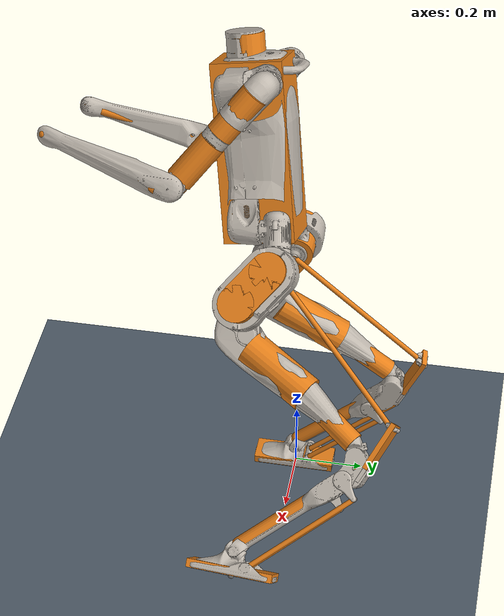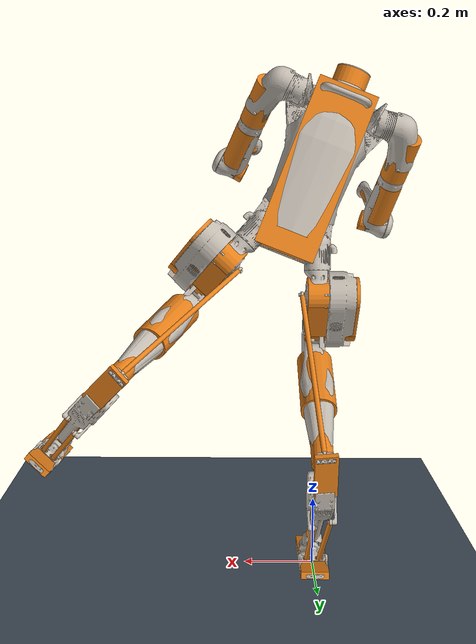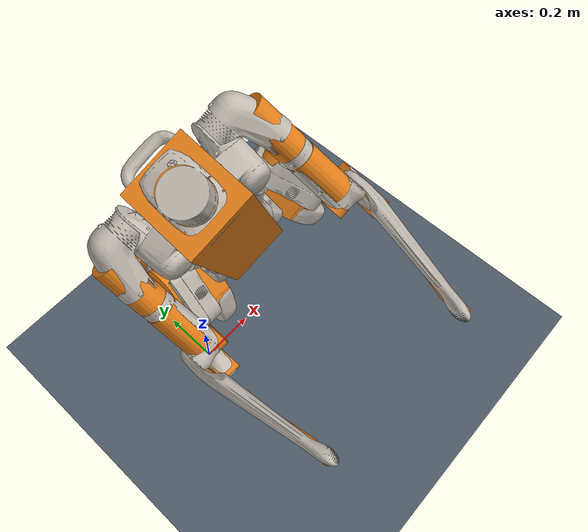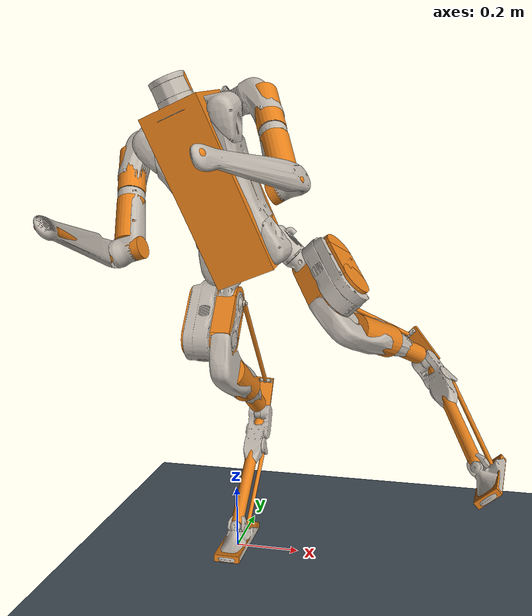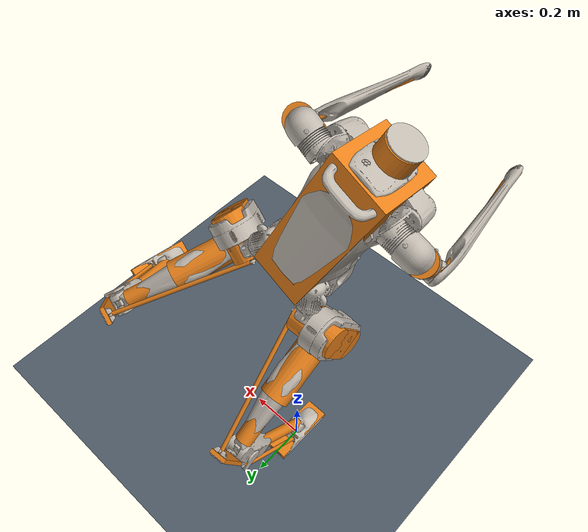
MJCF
<mujoco model='digit-v3'>
  <compiler angle='degree' eulerseq='xyz' meshdir='obj' texturedir='obj'/>
  <option iterations='400' solver='Newton' timestep='0.0001' gravity='0 0 -9.806' integrator='Euler'/>
  <size nconmax='100' />
  <asset>
    <material name='collision' rgba='0.1 0.5 0.9 0.4'/>
    <material name='plane' reflectance='0.0' texrepeat='1 1' texture='plane' texuniform='true'/>
	  <material name="MatGnd" reflectance="0.0" texture="texplane" texrepeat="1 1" texuniform="true"/>
    <texture builtin='checker' height='512' name='plane' rgb1='0.2 0.2 0.2' rgb2='0.3 0.3 0.3' type='2d' width='512'/>
    <texture name='texplane' type='2d' builtin='checker' rgb1='.2 .3 .4' rgb2='.4 .4 .4' width="512" height="512"/>
    <texture builtin='gradient' height='128' rgb1='0.4 0.6 0.8' rgb2='0 0 0' type='skybox' width='128'/>

    <material name="base-0" texture="base-0"/>
    <material name="base-1" texture="base-1"/>
    <material name="base-2" texture="base-2"/>
    <material name="base-3" texture="base-3"/>
    <material name="base-4" texture="base-4"/>
    <material name="left-hip-roll-0" texture="left-hip-roll-0"/>
    <material name="left-hip-yaw-0" texture="left-hip-yaw-0"/>
    <material name="left-hip-pitch-0" texture="left-hip-pitch-0"/>
	  <material name="left-achilles-rod-0" texture="left-achilles-rod-0"/>
    <material name="left-knee-0" texture="left-knee-0"/>
    <material name="left-shin-0" texture="left-shin-0"/>
    <material name="left-tarsus-0" texture="left-tarsus-0"/>
  	<material name="left-heel-spring-0" texture="left-heel-spring-0"/>
    <material name="left-toe-A-0" texture="left-toe-A-0"/>
    <material name="left-toe-A-rod-0" texture="left-toe-A-rod-0"/>
	  <material name="left-toe-B-0" texture="left-toe-B-0"/>
    <material name="left-toe-B-rod-0" texture="left-toe-B-rod-0"/>
    <material name="left-toe-pitch-0" texture="left-toe-pitch-0"/>
    <material name="left-toe-roll-0" texture="left-toe-roll-0"/>
    <material name="left-shoulder-roll-0" texture="left-shoulder-roll-0"/>
    <material name="left-shoulder-pitch-0" texture="left-shoulder-pitch-0"/>
    <material name="left-shoulder-yaw-0" texture="left-shoulder-yaw-0"/>
    <material name="left-elbow-0" texture="left-elbow-0"/>
    <material name="right-hip-roll-0" texture="right-hip-roll-0"/>
    <material name="right-hip-yaw-0" texture="right-hip-yaw-0"/>
    <material name="right-hip-pitch-0" texture="right-hip-pitch-0"/>
	  <material name="right-achilles-rod-0" texture="right-achilles-rod-0"/>
    <material name="right-knee-0" texture="right-knee-0"/>
    <material name="right-shin-0" texture="right-shin-0"/>
    <material name="right-tarsus-0" texture="right-tarsus-0"/>
	  <material name="right-heel-spring-0" texture="right-heel-spring-0"/>
    <material name="right-toe-A-0" texture="right-toe-A-0"/>
    <material name="right-toe-A-rod-0" texture="right-toe-A-rod-0"/>
	  <material name="right-toe-B-0" texture="right-toe-B-0"/>
    <material name="right-toe-B-rod-0" texture="right-toe-B-rod-0"/>
    <material name="right-toe-pitch-0" texture="right-toe-pitch-0"/>
    <material name="right-toe-roll-0" texture="right-toe-roll-0"/>
    <material name="right-shoulder-roll-0" texture="right-shoulder-roll-0"/>
    <material name="right-shoulder-pitch-0" texture="right-shoulder-pitch-0"/>
    <material name="right-shoulder-yaw-0" texture="right-shoulder-yaw-0"/>
    <material name="right-elbow-0" texture="right-elbow-0"/>

    <texture type="2d" name="base-0" file="torso.png"/>
    <texture type="2d" name="base-1" file="hip-roll-housing.png"/>
    <texture type="2d" name="base-2" file="hip-roll-housing.png"/>
    <texture type="2d" name="base-3" file="shoulder-roll-housing.png"/>
    <texture type="2d" name="base-4" file="shoulder-roll-housing.png"/>
    <texture type="2d" name="left-hip-roll-0" file="hip-yaw-housing.png"/>
    <texture type="2d" name="left-hip-yaw-0" file="hip-pitch-housing.png"/>
    <texture type="2d" name="left-hip-pitch-0" file="hip-pitch.png"/>
	  <texture type="2d" name="left-achilles-rod-0" file="achilles-rod.png"/>
    <texture type="2d" name="left-knee-0" file="knee.png"/>
    <texture type="2d" name="left-shin-0" file="shin.png"/>
    <texture type="2d" name="left-tarsus-0" file="tarsus.png"/>
	  <texture type="2d" name="left-heel-spring-0" file="heel-spring.png"/>
    <texture type="2d" name="left-toe-A-0" file="toe-output.png"/>
    <texture type="2d" name="left-toe-A-rod-0" file="toe-A-rod.png"/>
	  <texture type="2d" name="left-toe-B-0" file="toe-output.png"/>
    <texture type="2d" name="left-toe-B-rod-0" file="toe-B-rod.png"/>
    <texture type="2d" name="left-toe-pitch-0" file="toe-pitch.png"/>
    <texture type="2d" name="left-toe-roll-0" file="toe-roll.png"/>
    <texture type="2d" name="left-shoulder-roll-0" file="arm-L1.png"/>
    <texture type="2d" name="left-shoulder-pitch-0" file="arm-L2.png"/>
    <texture type="2d" name="left-shoulder-yaw-0" file="arm-L3.png"/>
    <texture type="2d" name="left-elbow-0" file="arm-L4.png"/>
    <texture type="2d" name="right-hip-roll-0" file="hip-yaw-housing.png"/>
    <texture type="2d" name="right-hip-yaw-0" file="hip-pitch-housing.png"/>
    <texture type="2d" name="right-hip-pitch-0" file="hip-pitch.png"/>
	  <texture type="2d" name="right-achilles-rod-0" file="achilles-rod.png"/>
    <texture type="2d" name="right-knee-0" file="knee.png"/>
    <texture type="2d" name="right-shin-0" file="shin.png"/>
    <texture type="2d" name="right-tarsus-0" file="tarsus.png"/>
	  <texture type="2d" name="right-heel-spring-0" file="heel-spring.png"/>
    <texture type="2d" name="right-toe-A-0" file="toe-output.png"/>
    <texture type="2d" name="right-toe-A-rod-0" file="toe-A-rod.png"/>
	  <texture type="2d" name="right-toe-B-0" file="toe-output.png"/>
    <texture type="2d" name="right-toe-B-rod-0" file="toe-B-rod.png"/>
    <texture type="2d" name="right-toe-pitch-0" file="toe-pitch.png"/>
    <texture type="2d" name="right-toe-roll-0" file="toe-roll.png"/>
    <texture type="2d" name="right-shoulder-roll-0" file="arm-L1.png"/>
    <texture type="2d" name="right-shoulder-pitch-0" file="arm-L2.png"/>
    <texture type="2d" name="right-shoulder-yaw-0" file="arm-L3.png"/>
    <texture type="2d" name="right-elbow-0" file="arm-L4.png"/>

    <mesh name='base-0' file='torso.obj'/>
    <mesh name='base-1' file='hip-roll-housing.obj'/>
    <mesh name='base-2' scale='1 -1 1' file='hip-roll-housing.obj'/>
    <mesh name='base-3' file='shoulder-roll-housing.obj'/>
    <mesh name='base-4' scale='1 -1 1' file='shoulder-roll-housing.obj'/>
    <mesh name='left-hip-roll-0' file='hip-yaw-housing.obj'/>
    <mesh name='left-hip-yaw-0' file='hip-pitch-housing.obj'/>
    <mesh name='left-hip-pitch-0' file='hip-pitch.obj'/>
    <mesh name='left-achilles-rod-0' file='achilles-rod.obj'/>
    <mesh name='left-knee-0' file='knee.obj'/>
    <mesh name='left-shin-0' file='shin.obj'/>
    <mesh name='left-tarsus-0' file='tarsus.obj'/>
    <mesh name='left-heel-spring-0' file='heel-spring.obj'/>
    <mesh name='left-toe-A-0' file='toe-output.obj'/>
    <mesh name='left-toe-A-rod-0' file='toe-A-rod.obj'/>
    <mesh name='left-toe-B-0' file='toe-output.obj'/>
    <mesh name='left-toe-B-rod-0' file='toe-B-rod.obj'/>
    <mesh name='left-toe-pitch-0' file='toe-pitch.obj'/>
    <mesh name='left-toe-roll-0' file='toe-roll.obj'/>
    <mesh name='left-shoulder-roll-0' file='arm-L1.obj'/>
    <mesh name='left-shoulder-pitch-0' file='arm-L2.obj'/>
    <mesh name='left-shoulder-yaw-0' file='arm-L3.obj'/>
    <mesh name='left-elbow-0' file='arm-L4.obj'/>
    <mesh name='right-hip-roll-0' scale='1 -1 1' file='hip-yaw-housing.obj'/>
    <mesh name='right-hip-yaw-0' scale='1 -1 1' file='hip-pitch-housing.obj'/>
    <mesh name='right-hip-pitch-0' scale='1 -1 1' file='hip-pitch.obj'/>
    <mesh name='right-achilles-rod-0' scale='1 -1 1' file='achilles-rod.obj'/>
    <mesh name='right-knee-0' scale='1 -1 1' file='knee.obj'/>
    <mesh name='right-shin-0' scale='1 -1 1' file='shin.obj'/>
    <mesh name='right-tarsus-0' scale='1 -1 1' file='tarsus.obj'/>
    <mesh name='right-heel-spring-0' scale='1 -1 1' file='heel-spring.obj'/>
    <mesh name='right-toe-A-0' scale='1 -1 1' file='toe-output.obj'/>
    <mesh name='right-toe-A-rod-0' scale='1 -1 1' file='toe-A-rod.obj'/>
    <mesh name='right-toe-B-0' scale='1 -1 1' file='toe-output.obj'/>
    <mesh name='right-toe-B-rod-0' scale='1 -1 1' file='toe-B-rod.obj'/>
    <mesh name='right-toe-pitch-0' scale='1 -1 1' file='toe-pitch.obj'/>
    <mesh name='right-toe-roll-0' scale='1 -1 1' file='toe-roll.obj'/>
    <mesh name='right-shoulder-roll-0' scale='1 -1 1' file='arm-L1.obj'/>
    <mesh name='right-shoulder-pitch-0' scale='1 -1 1' file='arm-L2.obj'/>
    <mesh name='right-shoulder-yaw-0' scale='1 -1 1' file='arm-L3.obj'/>
    <mesh name='right-elbow-0' scale='1 -1 1' file='arm-L4.obj'/>
  </asset>
  <default>
    <default class='collision'>
      <geom conaffinity='1' condim='3' contype='1'/>
    </default>
    <equality solimp='0.9 0.95 0.001 0.1 2' solref='0.001 1.1' />
    <geom conaffinity='0' condim='1' contype='0' solref='0.005 1' />
    <joint solreflimit='0.001 1' />
  </default>
  <worldbody>
    <geom name='ground' type='plane' size='0 0 1' conaffinity='15' condim='3' friction='1.0 0.2 0.2' pos='0 0 0' priority='100' material='MatGnd'/>
    <body name='base' pos='0.0841865 -0.081398 0.949271' euler='9.0815 -21.4989 -90.0010'>
      <inertial pos='0.001637 0.0002 0.259307' mass='15.028392' fullinertia='0.375905 0.344193 0.098732 -8.8e-05 0.0085 6.6e-05' />
      <joint type='free' limited='false'/>
      <geom type='mesh' mesh='base-0' pos='0 0 0' euler='90 0 -0' material='base-0'/>
      <geom type='mesh' mesh='base-1' pos='-0.001 0.091 0' euler='90 0 90' material='base-1'/>
      <geom type='mesh' mesh='base-2' pos='-0.001 -0.091 0' euler='90 180 90' material='base-2'/>
      <geom type='mesh' mesh='base-3' pos='-0.001 0.12 0.4' euler='80 0 90' material='base-3'/>
      <geom type='mesh' mesh='base-4' pos='-0.001 -0.12 0.4' euler='-80 0 -90' material='base-4'/>
      <geom type='box' size='0.0975 0.087 0.245' pos='0.008 0 0.21' euler='-0 0 -0' friction='0.7 0.01 0.005'  mass='15.028392' rgba="0.9 0.5 0.1 1" class='collision'/>
      <geom type='cylinder' size='0.05 0.0325' pos='0.02 0 0.49' euler='-0 0 -0' friction='0.7 0.01 0.005'  mass='15.028392' rgba="0.9 0.5 0.1 1" class='collision'/>
      <body name='left-hip-roll' pos='-0.001 0.091 0' euler='21.5 -90 0'>
        <inertial pos='-0.001967 0.000244 0.031435' mass='0.915088' fullinertia='0.001017 0.001148 0.000766 -3e-06 1.3e-05 -4e-06' />
        <joint name='left-hip-roll' type='hinge' axis='0 0 1' range='-60 60' stiffness='0' frictionloss='1' damping='1' armature='0.173824' limited='true' pos='0 0 0'/>
        <geom type='mesh' mesh='left-hip-roll-0' pos='0 0 0' euler='90 0 -0' material='left-hip-roll-0'/>
        <body name='left-hip-yaw' pos='-0.0505 0 0.044' euler='0 -90 0'>
          <inertial pos='1e-05 -0.001945 0.042033' mass='0.818753' fullinertia='0.001627 0.001929 0.00077 -1e-06 2e-06 5.3e-05' />
          <joint name='left-hip-yaw' type='hinge' axis='0 0 1' range='-40 40' stiffness='0' frictionloss='1' damping='1' armature='0.0679' limited='true' pos='0 0 0'/>
          <geom type='mesh' mesh='left-hip-yaw-0' pos='0 0 0' euler='90 0 -0' material='left-hip-yaw-0'/>
          <body name='left-hip-pitch' pos='0 0.004 0.068' euler='90 0 135'>
            <inertial pos='0.060537 0.000521 -0.038857' mass='6.244279' fullinertia='0.011533 0.033345 0.033958 -0.000171 0.000148 0.000178' />
            <joint name='left-hip-pitch' type='hinge' axis='0 0 -1' range='-60 90' stiffness='0' frictionloss='0.5' damping='1' armature='0.120473' limited='true' pos='0 0 0'/>
            <geom type='mesh' mesh='left-hip-pitch-0' pos='0 0 0' euler='90 0 -0' material='left-hip-pitch-0'/>
            <geom type='cylinder' size='0.05 0.072' pos='0 0 -0.04' euler='-0 0 -0' friction='0.7 0.01 0.005' contype='4' conaffinity='3' mass='6.244279' rgba="0.9 0.5 0.1 1" class='collision'/>
            <geom type='cylinder' size='0.05 0.072' pos='0.12 0 -0.04' euler='-0 0 -0' friction='0.7 0.01 0.005' contype='4' conaffinity='3' mass='6.244279' rgba="0.9 0.5 0.1 1" class='collision'/>
            <geom type='box' size='0.06 0.05 0.072' pos='0.06 0 -0.04' euler='-0 0 -0' friction='0.7 0.01 0.005' contype='4' conaffinity='3' mass='6.244279' rgba="0.9 0.5 0.1 1" class='collision'/>
            <body name='left-achilles-rod' pos='0 0 0.046' euler='4.09 0.05 -82.27'>
              <inertial pos='0.2506 0 0' mass='0.178148' fullinertia='3e-06 0.004501 0.004501 0 0 0' />
              <joint name='left-achilles-rod' type='ball' axis='0 0 1'  stiffness='0' frictionloss='0' damping='0.01' armature='0' limited='false' pos='0 0 0'/>
              <geom type='mesh' mesh='left-achilles-rod-0' pos='0 0 0' euler='90 0 -0' material='left-achilles-rod-0'/>
              <geom type='capsule' size='0.007 0.25' pos='0.25 0 0' euler='4 90 0' friction='0.7 0.01 0.005' contype='4' conaffinity='3' mass='0.178148' rgba="0.9 0.5 0.1 1" class='collision'/>
            </body>
            <body name='left-knee' pos='0.12 0 0.0045' euler='0 0 -90'>
              <inertial pos='0.045641 0.042154 0.001657' mass='1.227077' fullinertia='0.002643 0.005098 0.007019 -0.001832 6.6e-05 4.5e-05' />
              <joint name='left-knee' type='hinge' axis='0 0 1' range='-80 58.4' stiffness='0' frictionloss='0.5' damping='1' armature='0.120473' limited='true' pos='0 0 0'/>
              <geom type='mesh' mesh='left-knee-0' pos='0 0 0' euler='90 0 -0' material='left-knee-0'/>
              <body name='left-shin' pos='0.060677 0.047406 0' euler='-0 0 -0'>
                <inertial pos='0.174265 0.010265 0.00107' mass='0.895793' fullinertia='0.001128 0.022492 0.022793 0.001098 0.000196 -3e-06' />
                <joint name='left-shin' type='hinge' axis='0 0 1'  stiffness='60000' frictionloss='0' damping='0' armature='0' limited='false' pos='0 0 0'/>
                <geom type='mesh' mesh='left-shin-0' pos='0 0 0' euler='90 0 -0' material='left-shin-0'/>
                <geom type='cylinder' size='0.03 0.1715' pos='0.23 0 0' euler='0 90 0' friction='0.7 0.01 0.005' contype='4' conaffinity='3' mass='0.895793' rgba="0.9 0.5 0.1 1" class='collision'/>
                <geom type='cylinder' size='0.05 0.1' pos='0.125 0.009 0' euler='90 84 -3.042764221e-14' friction='0.7 0.01 0.005' contype='4' conaffinity='3' mass='0.895793' rgba="0.9 0.5 0.1 1" class='collision'/>
                <body name='left-tarsus' pos='0.434759 0.02 0' euler='-0 0 103'>
                  <inertial pos='0.100777 -0.029183 0.000678' mass='1.322865' fullinertia='0.000932 0.016409 0.016501 0.00061 0.000102 9e-06' />
                  <joint name='left-tarsus' type='hinge' axis='0 0 1' range='-50.3 71.6' stiffness='0' frictionloss='0' damping='0' armature='0' limited='true' pos='0 0 0'/>
                  <geom type='mesh' mesh='left-tarsus-0' pos='0 0 0' euler='90 0 -0' material='left-tarsus-0'/>
                  <geom type='capsule' size='0.02 0.18' pos='0.21 -0.03 0' euler='0 90 0' friction='0.7 0.01 0.005' contype='4' conaffinity='3' mass='1.322865' rgba="0.9 0.5 0.1 1" class='collision'/>
                  <geom type='box' size='0.007 0.07 0.03' pos='-0.07 -0.012 0' euler='5 3.975693352e-16 65' friction='0.7 0.01 0.005' contype='4' conaffinity='3' mass='1.322865' rgba="0.9 0.5 0.1 1" class='collision'/>
                  <body name='left-heel-spring' pos='-0.01766 -0.029456 0.00104' euler='4.47 0.32 155.8'>
                    <inertial pos='0.049086 0.004739 -4.5e-05' mass='0.230018' fullinertia='5.5e-05 0.00074 0.000701 1.5e-05 1e-06 0' />
                    <joint name='left-heel-spring' type='hinge' axis='0 0 1' range='-6 6' stiffness='43750' frictionloss='0' damping='0' armature='0' limited='true' pos='0 0 0'/>
                    <geom type='mesh' mesh='left-heel-spring-0' pos='0 0 0' euler='90 0 -0' material='left-heel-spring-0'/>
                  </body>
                  <body name='left-toe-A' pos='0.059 -0.034 -0.0276' euler='-180 0 88.96'>
                    <inertial pos='0.005161 1e-06 -0.002248' mass='0.139557' fullinertia='2.9e-05 5.8e-05 7.4e-05 0 -4e-06 0' />
                    <joint name='left-toe-A' type='hinge' axis='0 0 1' range='-46.2755 44.9815' stiffness='0' frictionloss='1' damping='1' armature='0.036089' limited='true' pos='0 0 0'/>
                    <geom type='mesh' mesh='left-toe-A-0' pos='0 0 0' euler='90 0 -0' material='left-toe-A-0'/>
                    <body name='left-toe-A-rod' pos='0.057 0 -0.008' euler='0.34 2.14 -88.45'>
                      <inertial pos='0.171071 0 0' mass='0.090983' fullinertia='1e-06 0.001182 0.001182 0 0 0' />
                      <joint name='left-toe-A-rod' type='ball' axis='0 0 1'  stiffness='0' frictionloss='0' damping='0.01' armature='0' limited='false' pos='0 0 0'/>
                      <geom type='mesh' mesh='left-toe-A-rod-0' pos='0 0 0' euler='90 0 -0' material='left-toe-A-rod-0'/>
                      <geom type='capsule' size='0.007 0.17' pos='0.17 0 0' euler='4 90 0' friction='0.7 0.01 0.005' contype='4' conaffinity='3' mass='0.090983' rgba="0.9 0.5 0.1 1" class='collision'/>
                    </body>
                  </body>
                  <body name='left-toe-B' pos='0.111 -0.034 0.0276' euler='0 0 -88.96'>
                    <inertial pos='0.005161 1e-06 -0.002248' mass='0.139557' fullinertia='2.9e-05 5.8e-05 7.4e-05 0 -4e-06 0' />
                    <joint name='left-toe-B' type='hinge' axis='0 0 1' range='-45.8918 45.5476' stiffness='0' frictionloss='1' damping='1' armature='0.036089' limited='true' pos='0 0 0'/>
                    <geom type='mesh' mesh='left-toe-B-0' pos='0 0 0' euler='90 0 -0' material='left-toe-B-0'/>
                    <body name='left-toe-B-rod' pos='0.057 0 -0.008' euler='-0.22 -3.08 88.34'>
                      <inertial pos='0.142991 0 0' mass='0.079507' fullinertia='1e-06 0.000768 0.000768 0 0 0' />
                      <joint name='left-toe-B-rod' type='ball' axis='0 0 1'  stiffness='0' frictionloss='0' damping='0.01' armature='0' limited='false' pos='0 0 0'/>
                      <geom type='mesh' mesh='left-toe-B-rod-0' pos='0 0 0' euler='90 0 -0' material='left-toe-B-rod-0'/>
                      <geom type='capsule' size='0.007 0.144' pos='0.144 0 0' euler='4 90 0' friction='0.7 0.01 0.005' contype='4' conaffinity='3' mass='0.079507' rgba="0.9 0.5 0.1 1" class='collision'/>
                    </body>
                  </body>
                  <body name='left-toe-pitch' pos='0.408 -0.04 0' euler='-0 0 71.75'>
                    <inertial pos='-0.000141 2e-06 3e-06' mass='0.043881' fullinertia='5e-06 8e-06 4e-06 0 0 0' />
                    <joint name='left-toe-pitch' type='hinge' axis='0 0 1' range='-44 34' stiffness='0' frictionloss='0' damping='0' armature='0' limited='true' pos='0 0 0'/>
                    <geom type='mesh' mesh='left-toe-pitch-0' pos='0 0 0' euler='90 0 -0' material='left-toe-pitch-0'/>
                    <body name='left-toe-roll' pos='0 0 0' euler='0 90 0'>
                      <inertial pos='9e-06 -0.028084 -0.023204' mass='0.531283' fullinertia='0.00187 0.001616 0.000843 0 0 0.000566' />
                      <joint name='left-toe-roll' type='hinge' axis='0 0 1' range='-37 33' stiffness='0' frictionloss='0' damping='0' armature='0' limited='true' pos='0 0 0'/>
                      <geom type='mesh' mesh='left-toe-roll-0' pos='0 0 0' euler='90 0 -0' material='left-toe-roll-0'/>
                      <geom type='box' size='0.04 0.1175 0.0115' pos='0 -0.0437 -0.0255' euler='-60 0 0' friction='0.7 0.01 0.005' contype='4' conaffinity='3' mass='0.531283' rgba="0.9 0.5 0.1 1" class='collision'/>
                      <site name='left-foot' pos='0 -0.05456 -0.0315' euler='-60 0 -90' size='0.01'/>
                      <body name='left-foot' pos='0 -0.05456 -0.0315' euler='-60 0 -90'>
                      </body>
                    </body>
                  </body>
                </body>
              </body>
            </body>
          </body>
        </body>
      </body>
      <body name='left-shoulder-roll' pos='-0.001 0.12 0.4' euler='-10 -90 0'>
        <inertial pos='-0.000819 -0.003158 0.023405' mass='0.535396' fullinertia='0.000704 0.00075 0.000298 1.4e-05 1.2e-05 3.5e-05' />
        <!--original range-->
        <joint name='left-shoulder-roll' type='hinge' axis='0 0 1' range='-8.6288 -8.6286' stiffness='0' frictionloss='2' damping='2' armature='0.173824' limited='true' pos='0 0 0'/>
        <geom type='mesh' mesh='left-shoulder-roll-0' pos='0 0 0' euler='90 0 -16' material='left-shoulder-roll-0'/>
        <body name='left-shoulder-pitch' pos='-0.00317 -0.011055 0.0555' euler='90 -16 -45'>
          <inertial pos='-4.2e-05 -0.061882 -0.073788' mass='1.440357' fullinertia='0.006761 0.002087 0.005778 -6e-06 -3e-06 -0.002046' />
          <!--original range-->
          <joint name='left-shoulder-pitch' type='hinge' axis='0 0 -1' range='62.5784 62.5786' stiffness='0' frictionloss='2' damping='2' armature='0.173824' limited='true' pos='0 0 0'/>
          <geom type='mesh' mesh='left-shoulder-pitch-0' pos='0 0 0' euler='90 0 -0' material='left-shoulder-pitch-0'/>
          <geom type='cylinder' size='0.038 0.07' pos='0 -0.093 -0.1' euler='90 0 -0' friction='0.7 0.01 0.005'  mass='1.440357' rgba="0.9 0.5 0.1 1" class='collision'/>
          <body name='left-shoulder-yaw' pos='0 -0.165 -0.1' euler='90 0 -0'>
            <inertial pos='-3e-05 0.001937 0.11407' mass='1.065387' fullinertia='0.006967 0.007003 0.000673 -1e-06 -1e-06 -1.5e-05' />
            <!--original range-->
            <joint name='left-shoulder-yaw' type='hinge' axis='0 0 1' range='0.0973 0.0975' stiffness='0' frictionloss='2' damping='1' armature='0.0679' limited='true' pos='0 0 0'/>
            <geom type='mesh' mesh='left-shoulder-yaw-0' pos='0 0 0' euler='90 0 -0' material='left-shoulder-yaw-0'/>
            <geom type='cylinder' size='0.038 0.0675' pos='0 0 0.092558' euler='-0 0 -0' friction='0.7 0.01 0.005'  mass='1.065387' rgba="0.9 0.5 0.1 1" class='collision'/>
            <geom type='cylinder' size='0.03 0.04' pos='0 0.0035 0.185' euler='90 1.590277341e-15 22.5' friction='0.7 0.01 0.005'  mass='1.065387' rgba="0.9 0.5 0.1 1" class='collision'/>
            <body name='left-elbow' pos='0 -0.0385 0.185' euler='90 1.590277341e-15 22.5'>
              <inertial pos='0.107996 0.000521 -0.017765' mass='0.550582' fullinertia='0.000476 0.009564 0.009437 -2.9e-05 0.001403 9e-06' />
              <!--original range-->
              <joint name='left-elbow' type='hinge' axis='0 0 1' range='-7.9699 -7.9697' stiffness='0' frictionloss='2' damping='1' armature='0.173824' limited='true' pos='0 0 0'/>
              <geom type='mesh' mesh='left-elbow-0' pos='0 0 0' euler='90 0 -0' material='left-elbow-0'/>
              <geom type='cylinder' size='0.013 0.1565' pos='0.184 0.01 -0.026' euler='170 78 -180' friction='0.7 0.01 0.005'  mass='0.550582' rgba="0.9 0.5 0.1 1" class='collision'/>
              <geom type='sphere' size='0.015' pos='0.37937 0 -0.061912' euler='-0 0 -0' friction='0.7 0.01 0.005'  mass='0.550582' rgba="0.9 0.5 0.1 1" class='collision'/>
              <body name='left-hand' pos='0.369 0 -0.07912' euler='90 0 -10'>
              </body>
            </body>
          </body>
        </body>
      </body>
      <body name='right-hip-roll' pos='-0.001 -0.091 0' euler='-21.5 -90 0'>
        <inertial pos='-0.001967 -0.000244 0.031435' mass='0.915088' fullinertia='0.001017 0.001148 0.000766 3e-06 1.3e-05 4e-06' />
        <joint name='right-hip-roll' type='hinge' axis='0 0 1' range='-60 60' stiffness='0' frictionloss='1' damping='1' armature='0.173824' limited='true' pos='0 0 0'/>
        <geom type='mesh' mesh='right-hip-roll-0' pos='0 0 0' euler='-90 0 -0' material='right-hip-roll-0'/>
        <body name='right-hip-yaw' pos='-0.0505 0 0.044' euler='0 -90 0'>
          <inertial pos='1e-05 0.001945 0.042033' mass='0.818753' fullinertia='0.001627 0.001929 0.00077 1e-06 2e-06 -5.3e-05' />
          <joint name='right-hip-yaw' type='hinge' axis='0 0 1' range='-40 40' stiffness='0' frictionloss='1' damping='1' armature='0.0679' limited='true' pos='0 0 0'/>
          <geom type='mesh' mesh='right-hip-yaw-0' pos='0 0 0' euler='-90 0 -0' material='right-hip-yaw-0'/>
          <body name='right-hip-pitch' pos='0 -0.004 0.068' euler='-90 0 -135'>
            <inertial pos='0.060537 -0.000521 -0.038857' mass='6.244279' fullinertia='0.011533 0.033345 0.033958 0.000171 0.000148 -0.000178' />
            <joint name='right-hip-pitch' type='hinge' axis='0 0 -1' range='-90 60' stiffness='0' frictionloss='0.5' damping='1' armature='0.120473' limited='true' pos='0 0 0'/>
            <geom type='mesh' mesh='right-hip-pitch-0' pos='0 0 0' euler='-90 0 -0' material='right-hip-pitch-0'/>
            <geom type='cylinder' size='0.05 0.072' pos='0 0 -0.04' euler='-0 0 -0' friction='0.7 0.01 0.005' contype='2' conaffinity='1' mass='6.244279' rgba="0.9 0.5 0.1 1" class='collision'/>
            <geom type='cylinder' size='0.05 0.072' pos='0.12 0 -0.04' euler='-0 0 -0' friction='0.7 0.01 0.005' contype='2' conaffinity='1' mass='6.244279' rgba="0.9 0.5 0.1 1" class='collision'/>
            <geom type='box' size='0.06 0.05 0.072' pos='0.06 0 -0.04' euler='-0 0 -0' friction='0.7 0.01 0.005' contype='2' conaffinity='1' mass='6.244279' rgba="0.9 0.5 0.1 1" class='collision'/>
            <body name='right-achilles-rod' pos='0 0 0.046' euler='-4.09 0.05 82.27'>
              <inertial pos='0.2506 0 0' mass='0.178148' fullinertia='3e-06 0.004501 0.004501 0 0 0' />
              <joint name='right-achilles-rod' type='ball' axis='0 0 1'  stiffness='0' frictionloss='0' damping='0.01' armature='0' limited='false' pos='0 0 0'/>
              <geom type='mesh' mesh='right-achilles-rod-0' pos='0 0 0' euler='-90 0 -0' material='right-achilles-rod-0'/>
              <geom type='capsule' size='0.007 0.25' pos='0.25 0 0' euler='-4 90 0' friction='0.7 0.01 0.005' contype='2' conaffinity='1' mass='0.178148' rgba="0.9 0.5 0.1 1" class='collision'/>
            </body>
            <body name='right-knee' pos='0.12 0 0.0045' euler='-0 0 90'>
              <inertial pos='0.045641 -0.042154 0.001657' mass='1.227077' fullinertia='0.002643 0.005098 0.007019 0.001832 6.6e-05 -4.5e-05' />
              <joint name='right-knee' type='hinge' axis='0 0 1' range='-58.4 80' stiffness='0' frictionloss='0.5' damping='1' armature='0.120473' limited='true' pos='0 0 0'/>
              <geom type='mesh' mesh='right-knee-0' pos='0 0 0' euler='-90 0 -0' material='right-knee-0'/>
              <body name='right-shin' pos='0.060677 -0.047406 0' euler='-0 0 -0'>
                <inertial pos='0.174265 -0.010265 0.00107' mass='0.895793' fullinertia='0.001128 0.022492 0.022793 -0.001098 0.000196 3e-06' />
                <joint name='right-shin' type='hinge' axis='0 0 1'  stiffness='60000' frictionloss='0' damping='0' armature='0' limited='false' pos='0 0 0'/>
                <geom type='mesh' mesh='right-shin-0' pos='0 0 0' euler='-90 0 -0' material='right-shin-0'/>
                <geom type='cylinder' size='0.03 0.1715' pos='0.23 0 0' euler='0 90 0' friction='0.7 0.01 0.005' contype='2' conaffinity='1' mass='0.895793' rgba="0.9 0.5 0.1 1" class='collision'/>
                <geom type='cylinder' size='0.05 0.1' pos='0.125 -0.009 0' euler='-90 84 3.042764221e-14' friction='0.7 0.01 0.005' contype='2' conaffinity='1' mass='0.895793' rgba="0.9 0.5 0.1 1" class='collision'/>
                <body name='right-tarsus' pos='0.434759 -0.02 0' euler='0 0 -103'>
                  <inertial pos='0.100777 0.029183 0.000678' mass='1.322865' fullinertia='0.000932 0.016409 0.016501 -0.00061 0.000102 -9e-06' />
                  <joint name='right-tarsus' type='hinge' axis='0 0 1' range='-71.6 50.3' stiffness='0' frictionloss='0' damping='0' armature='0' limited='true' pos='0 0 0'/>
                  <geom type='mesh' mesh='right-tarsus-0' pos='0 0 0' euler='-90 0 -0' material='right-tarsus-0'/>
                  <geom type='capsule' size='0.02 0.18' pos='0.21 0.03 0' euler='0 90 0' friction='0.7 0.01 0.005' contype='2' conaffinity='1' mass='1.322865' rgba="0.9 0.5 0.1 1" class='collision'/>
                  <geom type='box' size='0.007 0.07 0.03' pos='-0.07 0.012 0' euler='-5 3.975693352e-16 -65' friction='0.7 0.01 0.005' contype='2' conaffinity='1' mass='1.322865' rgba="0.9 0.5 0.1 1" class='collision'/>
                  <body name='right-heel-spring' pos='-0.01766 0.029456 0.00104' euler='-4.47 0.32 -155.8'>
                    <inertial pos='0.049086 -0.004739 -4.5e-05' mass='0.230018' fullinertia='5.5e-05 0.00074 0.000701 -1.5e-05 1e-06 0' />
                    <joint name='right-heel-spring' type='hinge' axis='0 0 1' range='-6 6' stiffness='43750' frictionloss='0' damping='0' armature='0' limited='true' pos='0 0 0'/>
                    <geom type='mesh' mesh='right-heel-spring-0' pos='0 0 0' euler='-90 0 -0' material='right-heel-spring-0'/>
                  </body>
                  <body name='right-toe-A' pos='0.059 0.034 -0.0276' euler='180 0 -88.96'>
                    <inertial pos='0.005161 -1e-06 -0.002248' mass='0.139557' fullinertia='2.9e-05 5.8e-05 7.4e-05 0 -4e-06 0' />
                    <joint name='right-toe-A' type='hinge' axis='0 0 1' range='-44.9815 46.2755' stiffness='0' frictionloss='1' damping='1' armature='0.036089' limited='true' pos='0 0 0'/>
                    <geom type='mesh' mesh='right-toe-A-0' pos='0 0 0' euler='-90 0 -0' material='right-toe-A-0'/>
                    <body name='right-toe-A-rod' pos='0.057 0 -0.008' euler='-0.34 2.14 88.45'>
                      <inertial pos='0.171071 0 0' mass='0.090983' fullinertia='1e-06 0.001182 0.001182 0 0 0' />
                      <joint name='right-toe-A-rod' type='ball' axis='0 0 1'  stiffness='0' frictionloss='0' damping='0.01' armature='0' limited='false' pos='0 0 0'/>
                      <geom type='mesh' mesh='right-toe-A-rod-0' pos='0 0 0' euler='-90 0 -0' material='right-toe-A-rod-0'/>
                      <geom type='capsule' size='0.007 0.17' pos='0.17 0 0' euler='-4 90 0' friction='0.7 0.01 0.005' contype='2' conaffinity='1' mass='0.090983' rgba="0.9 0.5 0.1 1" class='collision'/>
                    </body>
                  </body>
                  <body name='right-toe-B' pos='0.111 0.034 0.0276' euler='-0 0 88.96'>
                    <inertial pos='0.005161 -1e-06 -0.002248' mass='0.139557' fullinertia='2.9e-05 5.8e-05 7.4e-05 0 -4e-06 0' />
                    <joint name='right-toe-B' type='hinge' axis='0 0 1' range='-45.5476 45.8918' stiffness='0' frictionloss='1' damping='1' armature='0.036089' limited='true' pos='0 0 0'/>
                    <geom type='mesh' mesh='right-toe-B-0' pos='0 0 0' euler='-90 0 -0' material='right-toe-B-0'/>
                    <body name='right-toe-B-rod' pos='0.057 0 -0.008' euler='0.22 -3.08 -88.34'>
                      <inertial pos='0.142991 0 0' mass='0.079507' fullinertia='1e-06 0.000768 0.000768 0 0 0' />
                      <joint name='right-toe-B-rod' type='ball' axis='0 0 1'  stiffness='0' frictionloss='0' damping='0.01' armature='0' limited='false' pos='0 0 0'/>
                      <geom type='mesh' mesh='right-toe-B-rod-0' pos='0 0 0' euler='-90 0 -0' material='right-toe-B-rod-0'/>
                      <geom type='capsule' size='0.007 0.144' pos='0.144 0 0' euler='-4 90 0' friction='0.7 0.01 0.005' contype='2' conaffinity='1' mass='0.079507' rgba="0.9 0.5 0.1 1" class='collision'/>
                    </body>
                  </body>
                  <body name='right-toe-pitch' pos='0.408 0.04 0' euler='0 0 -71.75'>
                    <inertial pos='-0.000141 -2e-06 3e-06' mass='0.043881' fullinertia='5e-06 8e-06 4e-06 0 0 0' />
                    <joint name='right-toe-pitch' type='hinge' axis='0 0 1' range='-34 44' stiffness='0' frictionloss='0' damping='0' armature='0' limited='true' pos='0 0 0'/>
                    <geom type='mesh' mesh='right-toe-pitch-0' pos='0 0 0' euler='-90 0 -0' material='right-toe-pitch-0'/>
                    <body name='right-toe-roll' pos='0 0 0' euler='0 90 0'>
                      <inertial pos='9e-06 0.028084 -0.023204' mass='0.531283' fullinertia='0.00187 0.001616 0.000843 0 0 -0.000566' />
                      <joint name='right-toe-roll' type='hinge' axis='0 0 1' range='-33 37' stiffness='0' frictionloss='0' damping='0' armature='0' limited='true' pos='0 0 0'/>
                      <geom type='mesh' mesh='right-toe-roll-0' pos='0 0 0' euler='-90 0 -0' material='right-toe-roll-0'/>
                      <geom type='box' size='0.04 0.1175 0.0115' pos='0 0.0437 -0.0255' euler='60 0 -0' friction='0.7 0.01 0.005' contype='2' conaffinity='1' mass='0.531283' rgba="0.9 0.5 0.1 1" class='collision'/>
                      <site name='right-foot' pos='0 0.05456 -0.0315' euler='60 0 90' size='0.01'/>
                      <body name='right-foot' pos='0 0.05456 -0.0315' euler='60 0 90'>
                      </body>
                    </body>
                  </body>
                </body>
              </body>
            </body>
          </body>
        </body>
      </body>
      <body name='right-shoulder-roll' pos='-0.001 -0.12 0.4' euler='10 -90 0'>
        <inertial pos='-0.000819 0.003158 0.023405' mass='0.535396' fullinertia='0.000704 0.00075 0.000298 -1.4e-05 1.2e-05 -3.5e-05' />
        <!--original range-->
        <joint name='right-shoulder-roll' type='hinge' axis='0 0 1' range='8.6286 8.6288' stiffness='0' frictionloss='2' damping='2' armature='0.173824' limited='true' pos='0 0 0'/>
        <geom type='mesh' mesh='right-shoulder-roll-0' pos='0 0 0' euler='-90 0 16' material='right-shoulder-roll-0'/>
        <body name='right-shoulder-pitch' pos='-0.00317 0.011055 0.0555' euler='-90 -16 45'>
          <inertial pos='-4.2e-05 0.061882 -0.073788' mass='1.440357' fullinertia='0.006761 0.002087 0.005778 6e-06 -3e-06 0.002046' />
          <!--original range-->
          <joint name='right-shoulder-pitch' type='hinge' axis='0 0 -1' range='-62.5786 -62.5784' stiffness='0' frictionloss='2' damping='2' armature='0.173824' limited='true' pos='0 0 0'/>
          <geom type='mesh' mesh='right-shoulder-pitch-0' pos='0 0 0' euler='-90 0 -0' material='right-shoulder-pitch-0'/>
          <geom type='cylinder' size='0.038 0.07' pos='0 0.093 -0.1' euler='-90 0 0' friction='0.7 0.01 0.005'  mass='1.440357' rgba="0.9 0.5 0.1 1" class='collision'/>
          <body name='right-shoulder-yaw' pos='0 0.165 -0.1' euler='-90 0 0'>
            <inertial pos='-3e-05 -0.001937 0.11407' mass='1.065387' fullinertia='0.006967 0.007003 0.000673 1e-06 -1e-06 1.5e-05' />
            <!--original range-->
            <joint name='right-shoulder-yaw' type='hinge' axis='0 0 1' range='-0.0975 -0.0973' stiffness='0' frictionloss='2' damping='1' armature='0.0679' limited='true' pos='0 0 0'/>
            <geom type='mesh' mesh='right-shoulder-yaw-0' pos='0 0 0' euler='-90 0 -0' material='right-shoulder-yaw-0'/>
            <geom type='cylinder' size='0.038 0.0675' pos='0 0 0.092558' euler='-0 0 -0' friction='0.7 0.01 0.005'  mass='1.065387' rgba="0.9 0.5 0.1 1" class='collision'/>
            <geom type='cylinder' size='0.03 0.04' pos='0 -0.0035 0.185' euler='-90 1.590277341e-15 -22.5' friction='0.7 0.01 0.005'  mass='1.065387' rgba="0.9 0.5 0.1 1" class='collision'/>
            <body name='right-elbow' pos='0 0.0385 0.185' euler='-90 1.590277341e-15 -22.5'>
              <inertial pos='0.107996 -0.000521 -0.017765' mass='0.550582' fullinertia='0.000476 0.009564 0.009437 2.9e-05 0.001403 -9e-06' />
              <!--original range-->
              <joint name='right-elbow' type='hinge' axis='0 0 1' range='7.9697 7.9699' stiffness='0' frictionloss='2' damping='1' armature='0.173824' limited='true' pos='0 0 0'/>
              <geom type='mesh' mesh='right-elbow-0' pos='0 0 0' euler='-90 0 -0' material='right-elbow-0'/>
              <geom type='cylinder' size='0.013 0.1565' pos='0.184 -0.01 -0.026' euler='-170 78 180' friction='0.7 0.01 0.005'  mass='0.550582' rgba="0.9 0.5 0.1 1" class='collision'/>
              <geom type='sphere' size='0.015' pos='0.37937 0 -0.061912' euler='-0 0 -0' friction='0.7 0.01 0.005'  mass='0.550582' rgba="0.9 0.5 0.1 1" class='collision'/>
              <body name='right-hand' pos='0.369 0 -0.07912' euler='-90 0 10'>
              </body>
            </body>
          </body>
        </body>
      </body>
    </body>
  </worldbody>
  <equality>
    <connect name='left-achilles-rod' body1='left-heel-spring' body2='left-achilles-rod' anchor='0.113789 -0.011056 0' />
    <connect name='left-toe-A-rod' body1='left-toe-roll' body2='left-toe-A-rod' anchor='0.0179 -0.009551 -0.054164' />
    <connect name='left-toe-B-rod' body1='left-toe-roll' body2='left-toe-B-rod' anchor='-0.0181 -0.009551 -0.054164' />
    <connect name='right-achilles-rod' body1='right-heel-spring' body2='right-achilles-rod' anchor='0.113789 0.011056 0' />
    <connect name='right-toe-A-rod' body1='right-toe-roll' body2='right-toe-A-rod' anchor='0.0179 0.009551 -0.054164' />
    <connect name='right-toe-B-rod' body1='right-toe-roll' body2='right-toe-B-rod' anchor='-0.0181 0.009551 -0.054164' />
  </equality>
  <actuator>
    <motor name='left-hip-roll' joint='left-hip-roll' gear='80' ctrllimited='true' ctrlrange='-1.583530725 1.583530725'/>
    <motor name='left-hip-yaw' joint='left-hip-yaw' gear='50' ctrllimited='true' ctrlrange='-1.58353072 1.58353072'/>
    <motor name='left-hip-pitch' joint='left-hip-pitch' gear='16' ctrllimited='true' ctrlrange='-13.557993625 13.557993625'/>
    <motor name='left-knee' joint='left-knee' gear='16' ctrllimited='true' ctrlrange='-14.457309375 14.457309375'/>
    <motor name='left-toe-A' joint='left-toe-A' gear='50' ctrllimited='true' ctrlrange='-0.8395188400000001 0.8395188400000001'/>
    <motor name='left-toe-B' joint='left-toe-B' gear='50' ctrllimited='true' ctrlrange='-0.8395188400000001 0.8395188400000001'/>
    <motor name='right-hip-roll' joint='right-hip-roll' gear='80' ctrllimited='true' ctrlrange='-1.583530725 1.583530725'/>
    <motor name='right-hip-yaw' joint='right-hip-yaw' gear='50' ctrllimited='true' ctrlrange='-1.58353072 1.58353072'/>
    <motor name='right-hip-pitch' joint='right-hip-pitch' gear='16' ctrllimited='true' ctrlrange='-13.557993625 13.557993625'/>
    <motor name='right-knee' joint='right-knee' gear='16' ctrllimited='true' ctrlrange='-14.457309375 14.457309375'/>
    <motor name='right-toe-A' joint='right-toe-A' gear='50' ctrllimited='true' ctrlrange='-0.8395188400000001 0.8395188400000001'/>
    <motor name='right-toe-B' joint='right-toe-B' gear='50' ctrllimited='true' ctrlrange='-0.8395188400000001 0.8395188400000001'/>
  </actuator>
</mujoco>
